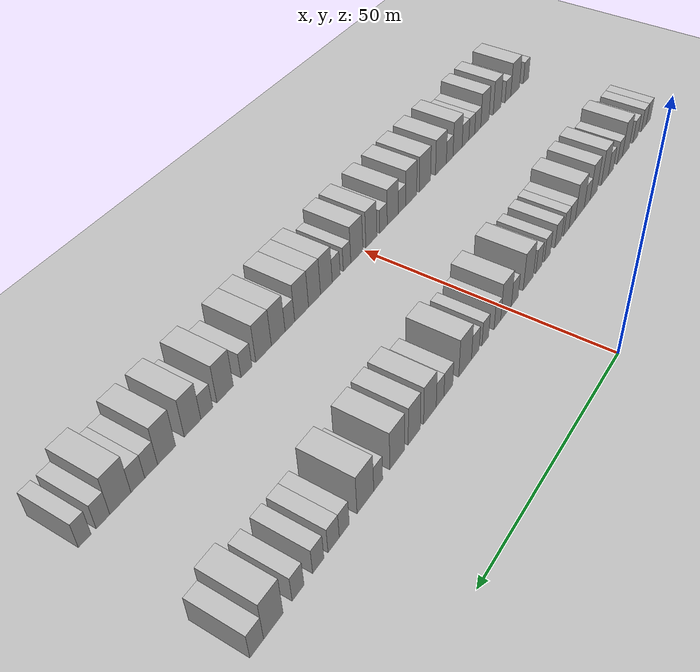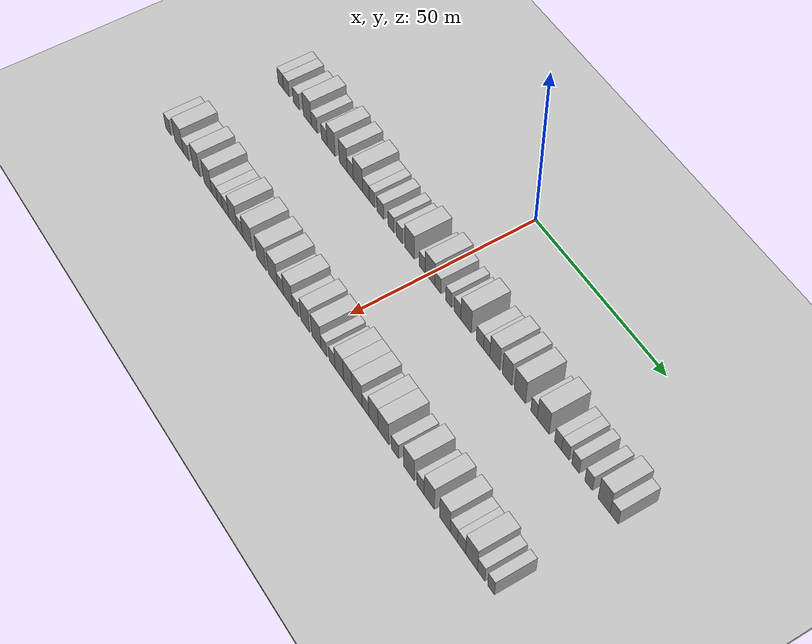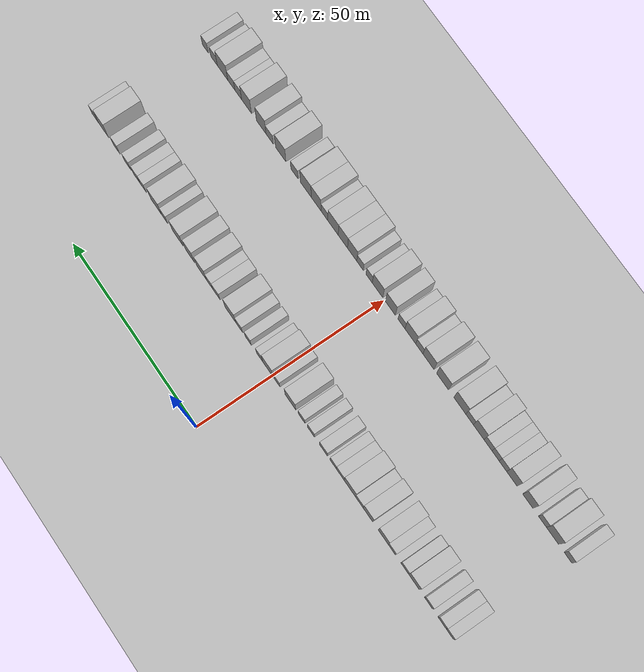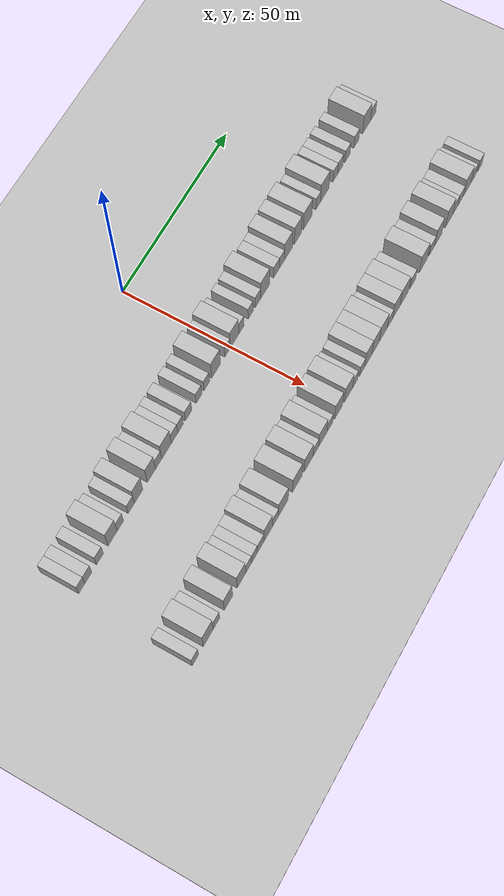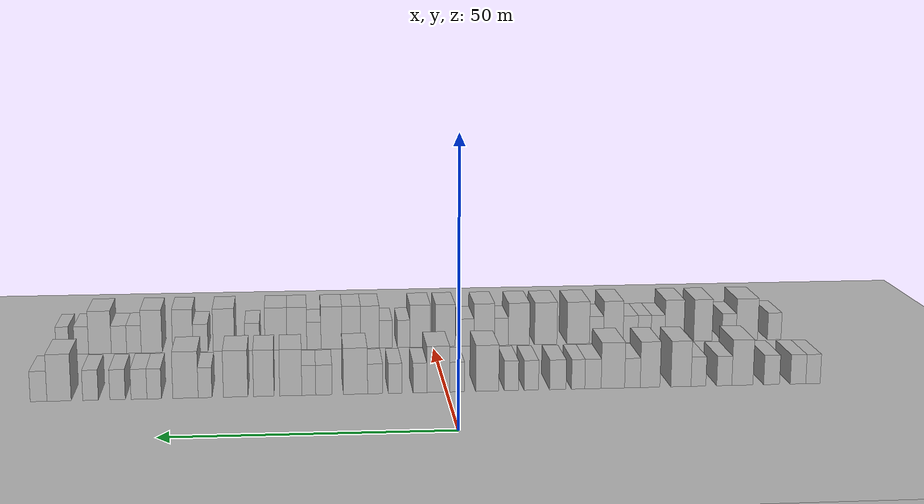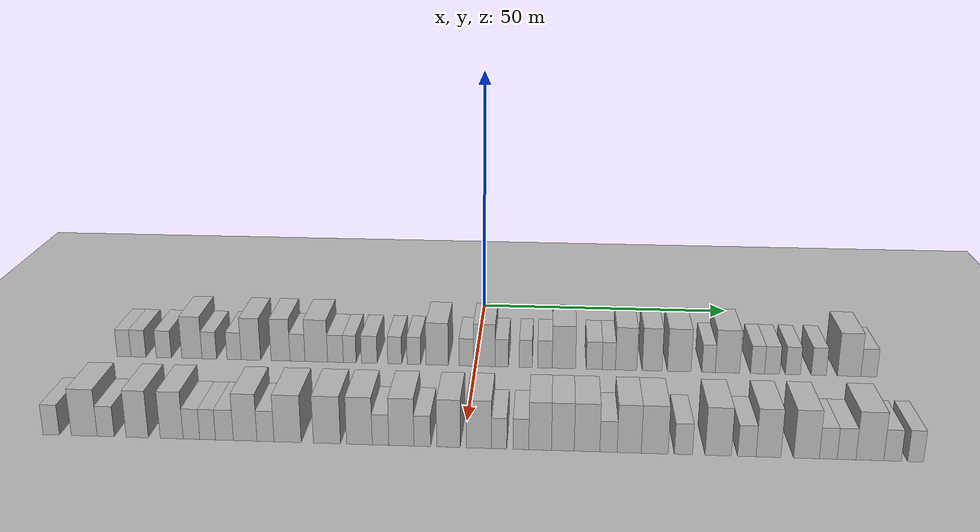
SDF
<sdf version="1.6">
 <world name="default">
  <include><name>ground_plane_1</name><uri>model://HANNAS_ground_plane</uri></include>
  <include>
   <name>ground_plane_2</name>
   <uri>model://HANNAS_ground_plane</uri>
   <pose>100 0 0  0 0 0</pose>
  </include>
  <model name="building_36">
   <static>1</static>
   <pose>25.0000 -66.6656 0 0.000000 0.000000 0.000000</pose>
   <link name="link">
    <pose>0 0 3.00 0 0 0</pose>
    <collision name="collision"><geometry><box><size>10.0000 2.6644 6.0000</size></box></geometry></collision>
    <visual name="visual">
     <cast_shadows>0</cast_shadows>
     <geometry><box><size>10.0000 2.6644 6.0000</size></box></geometry>
     <material>
      <script>
       <uri>model://HANNAS_wall/materials/scripts</uri>
       <uri>model://HANNAS_wall/materials/textures</uri>
       <name>vrc/HANNAS_wall</name>
      </script>
     </material>
    </visual>
   </link>
  </model>
  <model name="building_37">
   <static>1</static>
   <pose>25.0000 -63.8948 0 0.000000 0.000000 0.000000</pose>
   <link name="link">
    <pose>0 0 3.00 0 0 0</pose>
    <collision name="collision"><geometry><box><size>10.0000 2.8771 6.0000</size></box></geometry></collision>
    <visual name="visual">
     <cast_shadows>0</cast_shadows>
     <geometry><box><size>10.0000 2.8771 6.0000</size></box></geometry>
     <material>
      <script>
       <uri>model://HANNAS_wall/materials/scripts</uri>
       <uri>model://HANNAS_wall/materials/textures</uri>
       <name>vrc/HANNAS_wall</name>
      </script>
     </material>
    </visual>
   </link>
  </model>
  <model name="building_38">
   <static>1</static>
   <pose>25.0000 -58.9998 0 0.000000 0.000000 0.000000</pose>
   <link name="link">
    <pose>0 0 3.00 0 0 0</pose>
    <collision name="collision"><geometry><box><size>10.0000 2.9128 6.0000</size></box></geometry></collision>
    <visual name="visual">
     <cast_shadows>0</cast_shadows>
     <geometry><box><size>10.0000 2.9128 6.0000</size></box></geometry>
     <material>
      <script>
       <uri>model://HANNAS_wall/materials/scripts</uri>
       <uri>model://HANNAS_wall/materials/textures</uri>
       <name>vrc/HANNAS_wall</name>
      </script>
     </material>
    </visual>
   </link>
  </model>
  <model name="building_39">
   <static>1</static>
   <pose>25.0000 -53.5997 0 0.000000 0.000000 0.000000</pose>
   <link name="link">
    <pose>0 0 4.50 0 0 0</pose>
    <collision name="collision"><geometry><box><size>10.0000 3.8875 9.0000</size></box></geometry></collision>
    <visual name="visual">
     <cast_shadows>0</cast_shadows>
     <geometry><box><size>10.0000 3.8875 9.0000</size></box></geometry>
     <material>
      <script>
       <uri>model://HANNAS_wall/materials/scripts</uri>
       <uri>model://HANNAS_wall/materials/textures</uri>
       <name>vrc/HANNAS_wall</name>
      </script>
     </material>
    </visual>
   </link>
  </model>
  <model name="building_40">
   <static>1</static>
   <pose>25.0000 -50.2685 0 0.000000 0.000000 0.000000</pose>
   <link name="link">
    <pose>0 0 3.00 0 0 0</pose>
    <collision name="collision"><geometry><box><size>10.0000 2.7749 6.0000</size></box></geometry></collision>
    <visual name="visual">
     <cast_shadows>0</cast_shadows>
     <geometry><box><size>10.0000 2.7749 6.0000</size></box></geometry>
     <material>
      <script>
       <uri>model://HANNAS_wall/materials/scripts</uri>
       <uri>model://HANNAS_wall/materials/textures</uri>
       <name>vrc/HANNAS_wall</name>
      </script>
     </material>
    </visual>
   </link>
  </model>
  <model name="building_41">
   <static>1</static>
   <pose>25.0000 -45.5206 0 0.000000 0.000000 0.000000</pose>
   <link name="link">
    <pose>0 0 3.00 0 0 0</pose>
    <collision name="collision"><geometry><box><size>10.0000 2.7209 6.0000</size></box></geometry></collision>
    <visual name="visual">
     <cast_shadows>0</cast_shadows>
     <geometry><box><size>10.0000 2.7209 6.0000</size></box></geometry>
     <material>
      <script>
       <uri>model://HANNAS_wall/materials/scripts</uri>
       <uri>model://HANNAS_wall/materials/textures</uri>
       <name>vrc/HANNAS_wall</name>
      </script>
     </material>
    </visual>
   </link>
  </model>
  <model name="building_42">
   <static>1</static>
   <pose>25.0000 -42.3078 0 0.000000 0.000000 0.000000</pose>
   <link name="link">
    <pose>0 0 4.50 0 0 0</pose>
    <collision name="collision"><geometry><box><size>10.0000 3.7046 9.0000</size></box></geometry></collision>
    <visual name="visual">
     <cast_shadows>0</cast_shadows>
     <geometry><box><size>10.0000 3.7046 9.0000</size></box></geometry>
     <material>
      <script>
       <uri>model://HANNAS_wall/materials/scripts</uri>
       <uri>model://HANNAS_wall/materials/textures</uri>
       <name>vrc/HANNAS_wall</name>
      </script>
     </material>
    </visual>
   </link>
  </model>
  <model name="building_43">
   <static>1</static>
   <pose>25.0000 -36.6553 0 0.000000 0.000000 0.000000</pose>
   <link name="link">
    <pose>0 0 4.50 0 0 0</pose>
    <collision name="collision"><geometry><box><size>10.0000 3.6004 9.0000</size></box></geometry></collision>
    <visual name="visual">
     <cast_shadows>0</cast_shadows>
     <geometry><box><size>10.0000 3.6004 9.0000</size></box></geometry>
     <material>
      <script>
       <uri>model://HANNAS_wall/materials/scripts</uri>
       <uri>model://HANNAS_wall/materials/textures</uri>
       <name>vrc/HANNAS_wall</name>
      </script>
     </material>
    </visual>
   </link>
  </model>
  <model name="building_44">
   <static>1</static>
   <pose>25.0000 -33.4309 0 0.000000 0.000000 0.000000</pose>
   <link name="link">
    <pose>0 0 3.00 0 0 0</pose>
    <collision name="collision"><geometry><box><size>10.0000 2.8486 6.0000</size></box></geometry></collision>
    <visual name="visual">
     <cast_shadows>0</cast_shadows>
     <geometry><box><size>10.0000 2.8486 6.0000</size></box></geometry>
     <material>
      <script>
       <uri>model://HANNAS_wall/materials/scripts</uri>
       <uri>model://HANNAS_wall/materials/textures</uri>
       <name>vrc/HANNAS_wall</name>
      </script>
     </material>
    </visual>
   </link>
  </model>
  <model name="building_45">
   <static>1</static>
   <pose>25.0000 -29.8701 0 0.000000 0.000000 0.000000</pose>
   <link name="link">
    <pose>0 0 4.50 0 0 0</pose>
    <collision name="collision"><geometry><box><size>10.0000 4.2731 9.0000</size></box></geometry></collision>
    <visual name="visual">
     <cast_shadows>0</cast_shadows>
     <geometry><box><size>10.0000 4.2731 9.0000</size></box></geometry>
     <material>
      <script>
       <uri>model://HANNAS_wall/materials/scripts</uri>
       <uri>model://HANNAS_wall/materials/textures</uri>
       <name>vrc/HANNAS_wall</name>
      </script>
     </material>
    </visual>
   </link>
  </model>
  <model name="building_46">
   <static>1</static>
   <pose>25.0000 -26.2513 0 0.000000 0.000000 0.000000</pose>
   <link name="link">
    <pose>0 0 3.00 0 0 0</pose>
    <collision name="collision"><geometry><box><size>10.0000 2.9645 6.0000</size></box></geometry></collision>
    <visual name="visual">
     <cast_shadows>0</cast_shadows>
     <geometry><box><size>10.0000 2.9645 6.0000</size></box></geometry>
     <material>
      <script>
       <uri>model://HANNAS_wall/materials/scripts</uri>
       <uri>model://HANNAS_wall/materials/textures</uri>
       <name>vrc/HANNAS_wall</name>
      </script>
     </material>
    </visual>
   </link>
  </model>
  <model name="building_47">
   <static>1</static>
   <pose>25.0000 -23.5594 0 0.000000 0.000000 0.000000</pose>
   <link name="link">
    <pose>0 0 3.00 0 0 0</pose>
    <collision name="collision"><geometry><box><size>10.0000 2.4193 6.0000</size></box></geometry></collision>
    <visual name="visual">
     <cast_shadows>0</cast_shadows>
     <geometry><box><size>10.0000 2.4193 6.0000</size></box></geometry>
     <material>
      <script>
       <uri>model://HANNAS_wall/materials/scripts</uri>
       <uri>model://HANNAS_wall/materials/textures</uri>
       <name>vrc/HANNAS_wall</name>
      </script>
     </material>
    </visual>
   </link>
  </model>
  <model name="building_48">
   <static>1</static>
   <pose>25.0000 -19.8639 0 0.000000 0.000000 0.000000</pose>
   <link name="link">
    <pose>0 0 3.00 0 0 0</pose>
    <collision name="collision"><geometry><box><size>10.0000 2.9717 6.0000</size></box></geometry></collision>
    <visual name="visual">
     <cast_shadows>0</cast_shadows>
     <geometry><box><size>10.0000 2.9717 6.0000</size></box></geometry>
     <material>
      <script>
       <uri>model://HANNAS_wall/materials/scripts</uri>
       <uri>model://HANNAS_wall/materials/textures</uri>
       <name>vrc/HANNAS_wall</name>
      </script>
     </material>
    </visual>
   </link>
  </model>
  <model name="building_49">
   <static>1</static>
   <pose>25.0000 -15.0693 0 0.000000 0.000000 0.000000</pose>
   <link name="link">
    <pose>0 0 3.00 0 0 0</pose>
    <collision name="collision"><geometry><box><size>10.0000 2.6176 6.0000</size></box></geometry></collision>
    <visual name="visual">
     <cast_shadows>0</cast_shadows>
     <geometry><box><size>10.0000 2.6176 6.0000</size></box></geometry>
     <material>
      <script>
       <uri>model://HANNAS_wall/materials/scripts</uri>
       <uri>model://HANNAS_wall/materials/textures</uri>
       <name>vrc/HANNAS_wall</name>
      </script>
     </material>
    </visual>
   </link>
  </model>
  <model name="building_50">
   <static>1</static>
   <pose>25.0000 -11.4796 0 0.000000 0.000000 0.000000</pose>
   <link name="link">
    <pose>0 0 3.00 0 0 0</pose>
    <collision name="collision"><geometry><box><size>10.0000 2.5616 6.0000</size></box></geometry></collision>
    <visual name="visual">
     <cast_shadows>0</cast_shadows>
     <geometry><box><size>10.0000 2.5616 6.0000</size></box></geometry>
     <material>
      <script>
       <uri>model://HANNAS_wall/materials/scripts</uri>
       <uri>model://HANNAS_wall/materials/textures</uri>
       <name>vrc/HANNAS_wall</name>
      </script>
     </material>
    </visual>
   </link>
  </model>
  <model name="building_51">
   <static>1</static>
   <pose>25.0000 -7.1189 0 0.000000 0.000000 0.000000</pose>
   <link name="link">
    <pose>0 0 4.50 0 0 0</pose>
    <collision name="collision"><geometry><box><size>10.0000 4.1599 9.0000</size></box></geometry></collision>
    <visual name="visual">
     <cast_shadows>0</cast_shadows>
     <geometry><box><size>10.0000 4.1599 9.0000</size></box></geometry>
     <material>
      <script>
       <uri>model://HANNAS_wall/materials/scripts</uri>
       <uri>model://HANNAS_wall/materials/textures</uri>
       <name>vrc/HANNAS_wall</name>
      </script>
     </material>
    </visual>
   </link>
  </model>
  <model name="building_52">
   <static>1</static>
   <pose>25.0000 -1.6992 0 0.000000 0.000000 0.000000</pose>
   <link name="link">
    <pose>0 0 3.00 0 0 0</pose>
    <collision name="collision"><geometry><box><size>10.0000 2.6795 6.0000</size></box></geometry></collision>
    <visual name="visual">
     <cast_shadows>0</cast_shadows>
     <geometry><box><size>10.0000 2.6795 6.0000</size></box></geometry>
     <material>
      <script>
       <uri>model://HANNAS_wall/materials/scripts</uri>
       <uri>model://HANNAS_wall/materials/textures</uri>
       <name>vrc/HANNAS_wall</name>
      </script>
     </material>
    </visual>
   </link>
  </model>
  <model name="building_53">
   <static>1</static>
   <pose>25.0000 1.6835 0 0.000000 0.000000 0.000000</pose>
   <link name="link">
    <pose>0 0 4.50 0 0 0</pose>
    <collision name="collision"><geometry><box><size>10.0000 4.0857 9.0000</size></box></geometry></collision>
    <visual name="visual">
     <cast_shadows>0</cast_shadows>
     <geometry><box><size>10.0000 4.0857 9.0000</size></box></geometry>
     <material>
      <script>
       <uri>model://HANNAS_wall/materials/scripts</uri>
       <uri>model://HANNAS_wall/materials/textures</uri>
       <name>vrc/HANNAS_wall</name>
      </script>
     </material>
    </visual>
   </link>
  </model>
  <model name="building_54">
   <static>1</static>
   <pose>25.0000 4.9581 0 0.000000 0.000000 0.000000</pose>
   <link name="link">
    <pose>0 0 3.00 0 0 0</pose>
    <collision name="collision"><geometry><box><size>10.0000 2.4636 6.0000</size></box></geometry></collision>
    <visual name="visual">
     <cast_shadows>0</cast_shadows>
     <geometry><box><size>10.0000 2.4636 6.0000</size></box></geometry>
     <material>
      <script>
       <uri>model://HANNAS_wall/materials/scripts</uri>
       <uri>model://HANNAS_wall/materials/textures</uri>
       <name>vrc/HANNAS_wall</name>
      </script>
     </material>
    </visual>
   </link>
  </model>
  <model name="building_55">
   <static>1</static>
   <pose>25.0000 9.3932 0 0.000000 0.000000 0.000000</pose>
   <link name="link">
    <pose>0 0 3.00 0 0 0</pose>
    <collision name="collision"><geometry><box><size>10.0000 2.4064 6.0000</size></box></geometry></collision>
    <visual name="visual">
     <cast_shadows>0</cast_shadows>
     <geometry><box><size>10.0000 2.4064 6.0000</size></box></geometry>
     <material>
      <script>
       <uri>model://HANNAS_wall/materials/scripts</uri>
       <uri>model://HANNAS_wall/materials/textures</uri>
       <name>vrc/HANNAS_wall</name>
      </script>
     </material>
    </visual>
   </link>
  </model>
  <model name="building_56">
   <static>1</static>
   <pose>25.0000 12.9492 0 0.000000 0.000000 0.000000</pose>
   <link name="link">
    <pose>0 0 3.00 0 0 0</pose>
    <collision name="collision"><geometry><box><size>10.0000 2.7057 6.0000</size></box></geometry></collision>
    <visual name="visual">
     <cast_shadows>0</cast_shadows>
     <geometry><box><size>10.0000 2.7057 6.0000</size></box></geometry>
     <material>
      <script>
       <uri>model://HANNAS_wall/materials/scripts</uri>
       <uri>model://HANNAS_wall/materials/textures</uri>
       <name>vrc/HANNAS_wall</name>
      </script>
     </material>
    </visual>
   </link>
  </model>
  <model name="building_57">
   <static>1</static>
   <pose>25.0000 16.4525 0 0.000000 0.000000 0.000000</pose>
   <link name="link">
    <pose>0 0 4.50 0 0 0</pose>
    <collision name="collision"><geometry><box><size>10.0000 4.3008 9.0000</size></box></geometry></collision>
    <visual name="visual">
     <cast_shadows>0</cast_shadows>
     <geometry><box><size>10.0000 4.3008 9.0000</size></box></geometry>
     <material>
      <script>
       <uri>model://HANNAS_wall/materials/scripts</uri>
       <uri>model://HANNAS_wall/materials/textures</uri>
       <name>vrc/HANNAS_wall</name>
      </script>
     </material>
    </visual>
   </link>
  </model>
  <model name="building_58">
   <static>1</static>
   <pose>25.0000 22.0597 0 0.000000 0.000000 0.000000</pose>
   <link name="link">
    <pose>0 0 3.00 0 0 0</pose>
    <collision name="collision"><geometry><box><size>10.0000 2.9136 6.0000</size></box></geometry></collision>
    <visual name="visual">
     <cast_shadows>0</cast_shadows>
     <geometry><box><size>10.0000 2.9136 6.0000</size></box></geometry>
     <material>
      <script>
       <uri>model://HANNAS_wall/materials/scripts</uri>
       <uri>model://HANNAS_wall/materials/textures</uri>
       <name>vrc/HANNAS_wall</name>
      </script>
     </material>
    </visual>
   </link>
  </model>
  <model name="building_59">
   <static>1</static>
   <pose>25.0000 24.7495 0 0.000000 0.000000 0.000000</pose>
   <link name="link">
    <pose>0 0 3.00 0 0 0</pose>
    <collision name="collision"><geometry><box><size>10.0000 2.4660 6.0000</size></box></geometry></collision>
    <visual name="visual">
     <cast_shadows>0</cast_shadows>
     <geometry><box><size>10.0000 2.4660 6.0000</size></box></geometry>
     <material>
      <script>
       <uri>model://HANNAS_wall/materials/scripts</uri>
       <uri>model://HANNAS_wall/materials/textures</uri>
       <name>vrc/HANNAS_wall</name>
      </script>
     </material>
    </visual>
   </link>
  </model>
  <model name="building_60">
   <static>1</static>
   <pose>25.0000 27.9422 0 0.000000 0.000000 0.000000</pose>
   <link name="link">
    <pose>0 0 4.50 0 0 0</pose>
    <collision name="collision"><geometry><box><size>10.0000 3.9193 9.0000</size></box></geometry></collision>
    <visual name="visual">
     <cast_shadows>0</cast_shadows>
     <geometry><box><size>10.0000 3.9193 9.0000</size></box></geometry>
     <material>
      <script>
       <uri>model://HANNAS_wall/materials/scripts</uri>
       <uri>model://HANNAS_wall/materials/textures</uri>
       <name>vrc/HANNAS_wall</name>
      </script>
     </material>
    </visual>
   </link>
  </model>
  <model name="building_61">
   <static>1</static>
   <pose>25.0000 32.7056 0 0.000000 0.000000 0.000000</pose>
   <link name="link">
    <pose>0 0 4.50 0 0 0</pose>
    <collision name="collision"><geometry><box><size>10.0000 3.6075 9.0000</size></box></geometry></collision>
    <visual name="visual">
     <cast_shadows>0</cast_shadows>
     <geometry><box><size>10.0000 3.6075 9.0000</size></box></geometry>
     <material>
      <script>
       <uri>model://HANNAS_wall/materials/scripts</uri>
       <uri>model://HANNAS_wall/materials/textures</uri>
       <name>vrc/HANNAS_wall</name>
      </script>
     </material>
    </visual>
   </link>
  </model>
  <model name="building_62">
   <static>1</static>
   <pose>25.0000 37.6634 0 0.000000 0.000000 0.000000</pose>
   <link name="link">
    <pose>0 0 4.50 0 0 0</pose>
    <collision name="collision"><geometry><box><size>10.0000 4.3081 9.0000</size></box></geometry></collision>
    <visual name="visual">
     <cast_shadows>0</cast_shadows>
     <geometry><box><size>10.0000 4.3081 9.0000</size></box></geometry>
     <material>
      <script>
       <uri>model://HANNAS_wall/materials/scripts</uri>
       <uri>model://HANNAS_wall/materials/textures</uri>
       <name>vrc/HANNAS_wall</name>
      </script>
     </material>
    </visual>
   </link>
  </model>
  <model name="building_63">
   <static>1</static>
   <pose>25.0000 43.0304 0 0.000000 0.000000 0.000000</pose>
   <link name="link">
    <pose>0 0 3.00 0 0 0</pose>
    <collision name="collision"><geometry><box><size>10.0000 2.4259 6.0000</size></box></geometry></collision>
    <visual name="visual">
     <cast_shadows>0</cast_shadows>
     <geometry><box><size>10.0000 2.4259 6.0000</size></box></geometry>
     <material>
      <script>
       <uri>model://HANNAS_wall/materials/scripts</uri>
       <uri>model://HANNAS_wall/materials/textures</uri>
       <name>vrc/HANNAS_wall</name>
      </script>
     </material>
    </visual>
   </link>
  </model>
  <model name="building_64">
   <static>1</static>
   <pose>25.0000 46.4620 0 0.000000 0.000000 0.000000</pose>
   <link name="link">
    <pose>0 0 4.50 0 0 0</pose>
    <collision name="collision"><geometry><box><size>10.0000 4.4374 9.0000</size></box></geometry></collision>
    <visual name="visual">
     <cast_shadows>0</cast_shadows>
     <geometry><box><size>10.0000 4.4374 9.0000</size></box></geometry>
     <material>
      <script>
       <uri>model://HANNAS_wall/materials/scripts</uri>
       <uri>model://HANNAS_wall/materials/textures</uri>
       <name>vrc/HANNAS_wall</name>
      </script>
     </material>
    </visual>
   </link>
  </model>
  <model name="building_65">
   <static>1</static>
   <pose>25.0000 51.9413 0 0.000000 0.000000 0.000000</pose>
   <link name="link">
    <pose>0 0 3.00 0 0 0</pose>
    <collision name="collision"><geometry><box><size>10.0000 2.5212 6.0000</size></box></geometry></collision>
    <visual name="visual">
     <cast_shadows>0</cast_shadows>
     <geometry><box><size>10.0000 2.5212 6.0000</size></box></geometry>
     <material>
      <script>
       <uri>model://HANNAS_wall/materials/scripts</uri>
       <uri>model://HANNAS_wall/materials/textures</uri>
       <name>vrc/HANNAS_wall</name>
      </script>
     </material>
    </visual>
   </link>
  </model>
  <model name="building_66">
   <static>1</static>
   <pose>25.0000 54.5927 0 0.000000 0.000000 0.000000</pose>
   <link name="link">
    <pose>0 0 3.00 0 0 0</pose>
    <collision name="collision"><geometry><box><size>10.0000 2.7815 6.0000</size></box></geometry></collision>
    <visual name="visual">
     <cast_shadows>0</cast_shadows>
     <geometry><box><size>10.0000 2.7815 6.0000</size></box></geometry>
     <material>
      <script>
       <uri>model://HANNAS_wall/materials/scripts</uri>
       <uri>model://HANNAS_wall/materials/textures</uri>
       <name>vrc/HANNAS_wall</name>
      </script>
     </material>
    </visual>
   </link>
  </model>
  <model name="building_67">
   <static>1</static>
   <pose>25.0000 58.3246 0 0.000000 0.000000 0.000000</pose>
   <link name="link">
    <pose>0 0 3.00 0 0 0</pose>
    <collision name="collision"><geometry><box><size>10.0000 2.6824 6.0000</size></box></geometry></collision>
    <visual name="visual">
     <cast_shadows>0</cast_shadows>
     <geometry><box><size>10.0000 2.6824 6.0000</size></box></geometry>
     <material>
      <script>
       <uri>model://HANNAS_wall/materials/scripts</uri>
       <uri>model://HANNAS_wall/materials/textures</uri>
       <name>vrc/HANNAS_wall</name>
      </script>
     </material>
    </visual>
   </link>
  </model>
  <model name="building_68">
   <static>1</static>
   <pose>25.0000 63.0228 0 0.000000 0.000000 0.000000</pose>
   <link name="link">
    <pose>0 0 3.00 0 0 0</pose>
    <collision name="collision"><geometry><box><size>10.0000 2.7141 6.0000</size></box></geometry></collision>
    <visual name="visual">
     <cast_shadows>0</cast_shadows>
     <geometry><box><size>10.0000 2.7141 6.0000</size></box></geometry>
     <material>
      <script>
       <uri>model://HANNAS_wall/materials/scripts</uri>
       <uri>model://HANNAS_wall/materials/textures</uri>
       <name>vrc/HANNAS_wall</name>
      </script>
     </material>
    </visual>
   </link>
  </model>
  <model name="building_69">
   <static>1</static>
   <pose>25.0000 68.4791 0 0.000000 0.000000 0.000000</pose>
   <link name="link">
    <pose>0 0 4.50 0 0 0</pose>
    <collision name="collision"><geometry><box><size>10.0000 4.1984 9.0000</size></box></geometry></collision>
    <visual name="visual">
     <cast_shadows>0</cast_shadows>
     <geometry><box><size>10.0000 4.1984 9.0000</size></box></geometry>
     <material>
      <script>
       <uri>model://HANNAS_wall/materials/scripts</uri>
       <uri>model://HANNAS_wall/materials/textures</uri>
       <name>vrc/HANNAS_wall</name>
      </script>
     </material>
    </visual>
   </link>
  </model>
  <model name="building_70">
   <static>1</static>
   <pose>25.0000 72.0230 0 0.000000 0.000000 0.000000</pose>
   <link name="link">
    <pose>0 0 3.00 0 0 0</pose>
    <collision name="collision"><geometry><box><size>10.0000 2.8895 6.0000</size></box></geometry></collision>
    <visual name="visual">
     <cast_shadows>0</cast_shadows>
     <geometry><box><size>10.0000 2.8895 6.0000</size></box></geometry>
     <material>
      <script>
       <uri>model://HANNAS_wall/materials/scripts</uri>
       <uri>model://HANNAS_wall/materials/textures</uri>
       <name>vrc/HANNAS_wall</name>
      </script>
     </material>
    </visual>
   </link>
  </model>
  <model name="building_142">
   <static>1</static>
   <pose>55.0000 -68.1562 0 0.000000 0.000000 0.000000</pose>
   <link name="link">
    <pose>0 0 3.00 0 0 0</pose>
    <collision name="collision"><geometry><box><size>10.0000 2.7629 6.0000</size></box></geometry></collision>
    <visual name="visual">
     <cast_shadows>0</cast_shadows>
     <geometry><box><size>10.0000 2.7629 6.0000</size></box></geometry>
     <material>
      <script>
       <uri>model://HANNAS_wall/materials/scripts</uri>
       <uri>model://HANNAS_wall/materials/textures</uri>
       <name>vrc/HANNAS_wall</name>
      </script>
     </material>
    </visual>
   </link>
  </model>
  <model name="building_143">
   <static>1</static>
   <pose>55.0000 -62.5851 0 0.000000 0.000000 0.000000</pose>
   <link name="link">
    <pose>0 0 4.50 0 0 0</pose>
    <collision name="collision"><geometry><box><size>10.0000 4.3792 9.0000</size></box></geometry></collision>
    <visual name="visual">
     <cast_shadows>0</cast_shadows>
     <geometry><box><size>10.0000 4.3792 9.0000</size></box></geometry>
     <material>
      <script>
       <uri>model://HANNAS_wall/materials/scripts</uri>
       <uri>model://HANNAS_wall/materials/textures</uri>
       <name>vrc/HANNAS_wall</name>
      </script>
     </material>
    </visual>
   </link>
  </model>
  <model name="building_144">
   <static>1</static>
   <pose>55.0000 -58.9670 0 0.000000 0.000000 0.000000</pose>
   <link name="link">
    <pose>0 0 3.00 0 0 0</pose>
    <collision name="collision"><geometry><box><size>10.0000 2.8569 6.0000</size></box></geometry></collision>
    <visual name="visual">
     <cast_shadows>0</cast_shadows>
     <geometry><box><size>10.0000 2.8569 6.0000</size></box></geometry>
     <material>
      <script>
       <uri>model://HANNAS_wall/materials/scripts</uri>
       <uri>model://HANNAS_wall/materials/textures</uri>
       <name>vrc/HANNAS_wall</name>
      </script>
     </material>
    </visual>
   </link>
  </model>
  <model name="building_145">
   <static>1</static>
   <pose>55.0000 -53.6835 0 0.000000 0.000000 0.000000</pose>
   <link name="link">
    <pose>0 0 4.50 0 0 0</pose>
    <collision name="collision"><geometry><box><size>10.0000 3.7102 9.0000</size></box></geometry></collision>
    <visual name="visual">
     <cast_shadows>0</cast_shadows>
     <geometry><box><size>10.0000 3.7102 9.0000</size></box></geometry>
     <material>
      <script>
       <uri>model://HANNAS_wall/materials/scripts</uri>
       <uri>model://HANNAS_wall/materials/textures</uri>
       <name>vrc/HANNAS_wall</name>
      </script>
     </material>
    </visual>
   </link>
  </model>
  <model name="building_146">
   <static>1</static>
   <pose>55.0000 -47.9120 0 0.000000 0.000000 0.000000</pose>
   <link name="link">
    <pose>0 0 4.50 0 0 0</pose>
    <collision name="collision"><geometry><box><size>10.0000 3.8327 9.0000</size></box></geometry></collision>
    <visual name="visual">
     <cast_shadows>0</cast_shadows>
     <geometry><box><size>10.0000 3.8327 9.0000</size></box></geometry>
     <material>
      <script>
       <uri>model://HANNAS_wall/materials/scripts</uri>
       <uri>model://HANNAS_wall/materials/textures</uri>
       <name>vrc/HANNAS_wall</name>
      </script>
     </material>
    </visual>
   </link>
  </model>
  <model name="building_147">
   <static>1</static>
   <pose>55.0000 -44.6135 0 0.000000 0.000000 0.000000</pose>
   <link name="link">
    <pose>0 0 3.00 0 0 0</pose>
    <collision name="collision"><geometry><box><size>10.0000 2.7642 6.0000</size></box></geometry></collision>
    <visual name="visual">
     <cast_shadows>0</cast_shadows>
     <geometry><box><size>10.0000 2.7642 6.0000</size></box></geometry>
     <material>
      <script>
       <uri>model://HANNAS_wall/materials/scripts</uri>
       <uri>model://HANNAS_wall/materials/textures</uri>
       <name>vrc/HANNAS_wall</name>
      </script>
     </material>
    </visual>
   </link>
  </model>
  <model name="building_148">
   <static>1</static>
   <pose>55.0000 -41.9197 0 0.000000 0.000000 0.000000</pose>
   <link name="link">
    <pose>0 0 3.00 0 0 0</pose>
    <collision name="collision"><geometry><box><size>10.0000 2.6235 6.0000</size></box></geometry></collision>
    <visual name="visual">
     <cast_shadows>0</cast_shadows>
     <geometry><box><size>10.0000 2.6235 6.0000</size></box></geometry>
     <material>
      <script>
       <uri>model://HANNAS_wall/materials/scripts</uri>
       <uri>model://HANNAS_wall/materials/textures</uri>
       <name>vrc/HANNAS_wall</name>
      </script>
     </material>
    </visual>
   </link>
  </model>
  <model name="building_149">
   <static>1</static>
   <pose>55.0000 -39.1231 0 0.000000 0.000000 0.000000</pose>
   <link name="link">
    <pose>0 0 3.00 0 0 0</pose>
    <collision name="collision"><geometry><box><size>10.0000 2.9695 6.0000</size></box></geometry></collision>
    <visual name="visual">
     <cast_shadows>0</cast_shadows>
     <geometry><box><size>10.0000 2.9695 6.0000</size></box></geometry>
     <material>
      <script>
       <uri>model://HANNAS_wall/materials/scripts</uri>
       <uri>model://HANNAS_wall/materials/textures</uri>
       <name>vrc/HANNAS_wall</name>
      </script>
     </material>
    </visual>
   </link>
  </model>
  <model name="building_150">
   <static>1</static>
   <pose>55.0000 -35.6779 0 0.000000 0.000000 0.000000</pose>
   <link name="link">
    <pose>0 0 4.50 0 0 0</pose>
    <collision name="collision"><geometry><box><size>10.0000 3.9209 9.0000</size></box></geometry></collision>
    <visual name="visual">
     <cast_shadows>0</cast_shadows>
     <geometry><box><size>10.0000 3.9209 9.0000</size></box></geometry>
     <material>
      <script>
       <uri>model://HANNAS_wall/materials/scripts</uri>
       <uri>model://HANNAS_wall/materials/textures</uri>
       <name>vrc/HANNAS_wall</name>
      </script>
     </material>
    </visual>
   </link>
  </model>
  <model name="building_151">
   <static>1</static>
   <pose>55.0000 -32.3105 0 0.000000 0.000000 0.000000</pose>
   <link name="link">
    <pose>0 0 3.00 0 0 0</pose>
    <collision name="collision"><geometry><box><size>10.0000 2.8139 6.0000</size></box></geometry></collision>
    <visual name="visual">
     <cast_shadows>0</cast_shadows>
     <geometry><box><size>10.0000 2.8139 6.0000</size></box></geometry>
     <material>
      <script>
       <uri>model://HANNAS_wall/materials/scripts</uri>
       <uri>model://HANNAS_wall/materials/textures</uri>
       <name>vrc/HANNAS_wall</name>
      </script>
     </material>
    </visual>
   </link>
  </model>
  <model name="building_152">
   <static>1</static>
   <pose>55.0000 -28.6632 0 0.000000 0.000000 0.000000</pose>
   <link name="link">
    <pose>0 0 4.50 0 0 0</pose>
    <collision name="collision"><geometry><box><size>10.0000 4.4807 9.0000</size></box></geometry></collision>
    <visual name="visual">
     <cast_shadows>0</cast_shadows>
     <geometry><box><size>10.0000 4.4807 9.0000</size></box></geometry>
     <material>
      <script>
       <uri>model://HANNAS_wall/materials/scripts</uri>
       <uri>model://HANNAS_wall/materials/textures</uri>
       <name>vrc/HANNAS_wall</name>
      </script>
     </material>
    </visual>
   </link>
  </model>
  <model name="building_153">
   <static>1</static>
   <pose>55.0000 -22.1889 0 0.000000 0.000000 0.000000</pose>
   <link name="link">
    <pose>0 0 4.50 0 0 0</pose>
    <collision name="collision"><geometry><box><size>10.0000 4.4678 9.0000</size></box></geometry></collision>
    <visual name="visual">
     <cast_shadows>0</cast_shadows>
     <geometry><box><size>10.0000 4.4678 9.0000</size></box></geometry>
     <material>
      <script>
       <uri>model://HANNAS_wall/materials/scripts</uri>
       <uri>model://HANNAS_wall/materials/textures</uri>
       <name>vrc/HANNAS_wall</name>
      </script>
     </material>
    </visual>
   </link>
  </model>
  <model name="building_154">
   <static>1</static>
   <pose>55.0000 -16.8564 0 0.000000 0.000000 0.000000</pose>
   <link name="link">
    <pose>0 0 4.50 0 0 0</pose>
    <collision name="collision"><geometry><box><size>10.0000 4.1971 9.0000</size></box></geometry></collision>
    <visual name="visual">
     <cast_shadows>0</cast_shadows>
     <geometry><box><size>10.0000 4.1971 9.0000</size></box></geometry>
     <material>
      <script>
       <uri>model://HANNAS_wall/materials/scripts</uri>
       <uri>model://HANNAS_wall/materials/textures</uri>
       <name>vrc/HANNAS_wall</name>
      </script>
     </material>
    </visual>
   </link>
  </model>
  <model name="building_155">
   <static>1</static>
   <pose>55.0000 -13.3955 0 0.000000 0.000000 0.000000</pose>
   <link name="link">
    <pose>0 0 3.00 0 0 0</pose>
    <collision name="collision"><geometry><box><size>10.0000 2.7248 6.0000</size></box></geometry></collision>
    <visual name="visual">
     <cast_shadows>0</cast_shadows>
     <geometry><box><size>10.0000 2.7248 6.0000</size></box></geometry>
     <material>
      <script>
       <uri>model://HANNAS_wall/materials/scripts</uri>
       <uri>model://HANNAS_wall/materials/textures</uri>
       <name>vrc/HANNAS_wall</name>
      </script>
     </material>
    </visual>
   </link>
  </model>
  <model name="building_156">
   <static>1</static>
   <pose>55.0000 -9.9818 0 0.000000 0.000000 0.000000</pose>
   <link name="link">
    <pose>0 0 4.50 0 0 0</pose>
    <collision name="collision"><geometry><box><size>10.0000 4.1025 9.0000</size></box></geometry></collision>
    <visual name="visual">
     <cast_shadows>0</cast_shadows>
     <geometry><box><size>10.0000 4.1025 9.0000</size></box></geometry>
     <material>
      <script>
       <uri>model://HANNAS_wall/materials/scripts</uri>
       <uri>model://HANNAS_wall/materials/textures</uri>
       <name>vrc/HANNAS_wall</name>
      </script>
     </material>
    </visual>
   </link>
  </model>
  <model name="building_157">
   <static>1</static>
   <pose>55.0000 -6.5800 0 0.000000 0.000000 0.000000</pose>
   <link name="link">
    <pose>0 0 3.00 0 0 0</pose>
    <collision name="collision"><geometry><box><size>10.0000 2.7012 6.0000</size></box></geometry></collision>
    <visual name="visual">
     <cast_shadows>0</cast_shadows>
     <geometry><box><size>10.0000 2.7012 6.0000</size></box></geometry>
     <material>
      <script>
       <uri>model://HANNAS_wall/materials/scripts</uri>
       <uri>model://HANNAS_wall/materials/textures</uri>
       <name>vrc/HANNAS_wall</name>
      </script>
     </material>
    </visual>
   </link>
  </model>
  <model name="building_158">
   <static>1</static>
   <pose>55.0000 -2.3152 0 0.000000 0.000000 0.000000</pose>
   <link name="link">
    <pose>0 0 4.50 0 0 0</pose>
    <collision name="collision"><geometry><box><size>10.0000 3.8284 9.0000</size></box></geometry></collision>
    <visual name="visual">
     <cast_shadows>0</cast_shadows>
     <geometry><box><size>10.0000 3.8284 9.0000</size></box></geometry>
     <material>
      <script>
       <uri>model://HANNAS_wall/materials/scripts</uri>
       <uri>model://HANNAS_wall/materials/textures</uri>
       <name>vrc/HANNAS_wall</name>
      </script>
     </material>
    </visual>
   </link>
  </model>
  <model name="building_159">
   <static>1</static>
   <pose>55.0000 2.6324 0 0.000000 0.000000 0.000000</pose>
   <link name="link">
    <pose>0 0 4.50 0 0 0</pose>
    <collision name="collision"><geometry><box><size>10.0000 4.0668 9.0000</size></box></geometry></collision>
    <visual name="visual">
     <cast_shadows>0</cast_shadows>
     <geometry><box><size>10.0000 4.0668 9.0000</size></box></geometry>
     <material>
      <script>
       <uri>model://HANNAS_wall/materials/scripts</uri>
       <uri>model://HANNAS_wall/materials/textures</uri>
       <name>vrc/HANNAS_wall</name>
      </script>
     </material>
    </visual>
   </link>
  </model>
  <model name="building_160">
   <static>1</static>
   <pose>55.0000 5.8947 0 0.000000 0.000000 0.000000</pose>
   <link name="link">
    <pose>0 0 3.00 0 0 0</pose>
    <collision name="collision"><geometry><box><size>10.0000 2.4577 6.0000</size></box></geometry></collision>
    <visual name="visual">
     <cast_shadows>0</cast_shadows>
     <geometry><box><size>10.0000 2.4577 6.0000</size></box></geometry>
     <material>
      <script>
       <uri>model://HANNAS_wall/materials/scripts</uri>
       <uri>model://HANNAS_wall/materials/textures</uri>
       <name>vrc/HANNAS_wall</name>
      </script>
     </material>
    </visual>
   </link>
  </model>
  <model name="building_161">
   <static>1</static>
   <pose>55.0000 9.3995 0 0.000000 0.000000 0.000000</pose>
   <link name="link">
    <pose>0 0 3.00 0 0 0</pose>
    <collision name="collision"><geometry><box><size>10.0000 2.5519 6.0000</size></box></geometry></collision>
    <visual name="visual">
     <cast_shadows>0</cast_shadows>
     <geometry><box><size>10.0000 2.5519 6.0000</size></box></geometry>
     <material>
      <script>
       <uri>model://HANNAS_wall/materials/scripts</uri>
       <uri>model://HANNAS_wall/materials/textures</uri>
       <name>vrc/HANNAS_wall</name>
      </script>
     </material>
    </visual>
   </link>
  </model>
  <model name="building_162">
   <static>1</static>
   <pose>55.0000 12.4965 0 0.000000 0.000000 0.000000</pose>
   <link name="link">
    <pose>0 0 4.50 0 0 0</pose>
    <collision name="collision"><geometry><box><size>10.0000 3.6422 9.0000</size></box></geometry></collision>
    <visual name="visual">
     <cast_shadows>0</cast_shadows>
     <geometry><box><size>10.0000 3.6422 9.0000</size></box></geometry>
     <material>
      <script>
       <uri>model://HANNAS_wall/materials/scripts</uri>
       <uri>model://HANNAS_wall/materials/textures</uri>
       <name>vrc/HANNAS_wall</name>
      </script>
     </material>
    </visual>
   </link>
  </model>
  <model name="building_163">
   <static>1</static>
   <pose>55.0000 16.1462 0 0.000000 0.000000 0.000000</pose>
   <link name="link">
    <pose>0 0 4.50 0 0 0</pose>
    <collision name="collision"><geometry><box><size>10.0000 3.6571 9.0000</size></box></geometry></collision>
    <visual name="visual">
     <cast_shadows>0</cast_shadows>
     <geometry><box><size>10.0000 3.6571 9.0000</size></box></geometry>
     <material>
      <script>
       <uri>model://HANNAS_wall/materials/scripts</uri>
       <uri>model://HANNAS_wall/materials/textures</uri>
       <name>vrc/HANNAS_wall</name>
      </script>
     </material>
    </visual>
   </link>
  </model>
  <model name="building_164">
   <static>1</static>
   <pose>55.0000 20.0254 0 0.000000 0.000000 0.000000</pose>
   <link name="link">
    <pose>0 0 4.50 0 0 0</pose>
    <collision name="collision"><geometry><box><size>10.0000 4.1012 9.0000</size></box></geometry></collision>
    <visual name="visual">
     <cast_shadows>0</cast_shadows>
     <geometry><box><size>10.0000 4.1012 9.0000</size></box></geometry>
     <material>
      <script>
       <uri>model://HANNAS_wall/materials/scripts</uri>
       <uri>model://HANNAS_wall/materials/textures</uri>
       <name>vrc/HANNAS_wall</name>
      </script>
     </material>
    </visual>
   </link>
  </model>
  <model name="building_165">
   <static>1</static>
   <pose>55.0000 23.4614 0 0.000000 0.000000 0.000000</pose>
   <link name="link">
    <pose>0 0 3.00 0 0 0</pose>
    <collision name="collision"><geometry><box><size>10.0000 2.7708 6.0000</size></box></geometry></collision>
    <visual name="visual">
     <cast_shadows>0</cast_shadows>
     <geometry><box><size>10.0000 2.7708 6.0000</size></box></geometry>
     <material>
      <script>
       <uri>model://HANNAS_wall/materials/scripts</uri>
       <uri>model://HANNAS_wall/materials/textures</uri>
       <name>vrc/HANNAS_wall</name>
      </script>
     </material>
    </visual>
   </link>
  </model>
  <model name="building_166">
   <static>1</static>
   <pose>55.0000 26.7755 0 0.000000 0.000000 0.000000</pose>
   <link name="link">
    <pose>0 0 4.50 0 0 0</pose>
    <collision name="collision"><geometry><box><size>10.0000 3.8573 9.0000</size></box></geometry></collision>
    <visual name="visual">
     <cast_shadows>0</cast_shadows>
     <geometry><box><size>10.0000 3.8573 9.0000</size></box></geometry>
     <material>
      <script>
       <uri>model://HANNAS_wall/materials/scripts</uri>
       <uri>model://HANNAS_wall/materials/textures</uri>
       <name>vrc/HANNAS_wall</name>
      </script>
     </material>
    </visual>
   </link>
  </model>
  <model name="building_167">
   <static>1</static>
   <pose>55.0000 30.8425 0 0.000000 0.000000 0.000000</pose>
   <link name="link">
    <pose>0 0 4.50 0 0 0</pose>
    <collision name="collision"><geometry><box><size>10.0000 4.2768 9.0000</size></box></geometry></collision>
    <visual name="visual">
     <cast_shadows>0</cast_shadows>
     <geometry><box><size>10.0000 4.2768 9.0000</size></box></geometry>
     <material>
      <script>
       <uri>model://HANNAS_wall/materials/scripts</uri>
       <uri>model://HANNAS_wall/materials/textures</uri>
       <name>vrc/HANNAS_wall</name>
      </script>
     </material>
    </visual>
   </link>
  </model>
  <model name="building_168">
   <static>1</static>
   <pose>55.0000 35.4188 0 0.000000 0.000000 0.000000</pose>
   <link name="link">
    <pose>0 0 3.00 0 0 0</pose>
    <collision name="collision"><geometry><box><size>10.0000 2.8759 6.0000</size></box></geometry></collision>
    <visual name="visual">
     <cast_shadows>0</cast_shadows>
     <geometry><box><size>10.0000 2.8759 6.0000</size></box></geometry>
     <material>
      <script>
       <uri>model://HANNAS_wall/materials/scripts</uri>
       <uri>model://HANNAS_wall/materials/textures</uri>
       <name>vrc/HANNAS_wall</name>
      </script>
     </material>
    </visual>
   </link>
  </model>
  <model name="building_169">
   <static>1</static>
   <pose>55.0000 40.9268 0 0.000000 0.000000 0.000000</pose>
   <link name="link">
    <pose>0 0 4.50 0 0 0</pose>
    <collision name="collision"><geometry><box><size>10.0000 4.1401 9.0000</size></box></geometry></collision>
    <visual name="visual">
     <cast_shadows>0</cast_shadows>
     <geometry><box><size>10.0000 4.1401 9.0000</size></box></geometry>
     <material>
      <script>
       <uri>model://HANNAS_wall/materials/scripts</uri>
       <uri>model://HANNAS_wall/materials/textures</uri>
       <name>vrc/HANNAS_wall</name>
      </script>
     </material>
    </visual>
   </link>
  </model>
  <model name="building_170">
   <static>1</static>
   <pose>55.0000 45.4412 0 0.000000 0.000000 0.000000</pose>
   <link name="link">
    <pose>0 0 3.00 0 0 0</pose>
    <collision name="collision"><geometry><box><size>10.0000 2.8888 6.0000</size></box></geometry></collision>
    <visual name="visual">
     <cast_shadows>0</cast_shadows>
     <geometry><box><size>10.0000 2.8888 6.0000</size></box></geometry>
     <material>
      <script>
       <uri>model://HANNAS_wall/materials/scripts</uri>
       <uri>model://HANNAS_wall/materials/textures</uri>
       <name>vrc/HANNAS_wall</name>
      </script>
     </material>
    </visual>
   </link>
  </model>
  <model name="building_171">
   <static>1</static>
   <pose>55.0000 48.8497 0 0.000000 0.000000 0.000000</pose>
   <link name="link">
    <pose>0 0 4.50 0 0 0</pose>
    <collision name="collision"><geometry><box><size>10.0000 3.9282 9.0000</size></box></geometry></collision>
    <visual name="visual">
     <cast_shadows>0</cast_shadows>
     <geometry><box><size>10.0000 3.9282 9.0000</size></box></geometry>
     <material>
      <script>
       <uri>model://HANNAS_wall/materials/scripts</uri>
       <uri>model://HANNAS_wall/materials/textures</uri>
       <name>vrc/HANNAS_wall</name>
      </script>
     </material>
    </visual>
   </link>
  </model>
  <model name="building_172">
   <static>1</static>
   <pose>55.0000 54.8251 0 0.000000 0.000000 0.000000</pose>
   <link name="link">
    <pose>0 0 4.50 0 0 0</pose>
    <collision name="collision"><geometry><box><size>10.0000 4.0225 9.0000</size></box></geometry></collision>
    <visual name="visual">
     <cast_shadows>0</cast_shadows>
     <geometry><box><size>10.0000 4.0225 9.0000</size></box></geometry>
     <material>
      <script>
       <uri>model://HANNAS_wall/materials/scripts</uri>
       <uri>model://HANNAS_wall/materials/textures</uri>
       <name>vrc/HANNAS_wall</name>
      </script>
     </material>
    </visual>
   </link>
  </model>
  <model name="building_173">
   <static>1</static>
   <pose>55.0000 58.2374 0 0.000000 0.000000 0.000000</pose>
   <link name="link">
    <pose>0 0 3.00 0 0 0</pose>
    <collision name="collision"><geometry><box><size>10.0000 2.8021 6.0000</size></box></geometry></collision>
    <visual name="visual">
     <cast_shadows>0</cast_shadows>
     <geometry><box><size>10.0000 2.8021 6.0000</size></box></geometry>
     <material>
      <script>
       <uri>model://HANNAS_wall/materials/scripts</uri>
       <uri>model://HANNAS_wall/materials/textures</uri>
       <name>vrc/HANNAS_wall</name>
      </script>
     </material>
    </visual>
   </link>
  </model>
  <model name="building_174">
   <static>1</static>
   <pose>55.0000 61.1025 0 0.000000 0.000000 0.000000</pose>
   <link name="link">
    <pose>0 0 3.00 0 0 0</pose>
    <collision name="collision"><geometry><box><size>10.0000 2.9282 6.0000</size></box></geometry></collision>
    <visual name="visual">
     <cast_shadows>0</cast_shadows>
     <geometry><box><size>10.0000 2.9282 6.0000</size></box></geometry>
     <material>
      <script>
       <uri>model://HANNAS_wall/materials/scripts</uri>
       <uri>model://HANNAS_wall/materials/textures</uri>
       <name>vrc/HANNAS_wall</name>
      </script>
     </material>
    </visual>
   </link>
  </model>
  <model name="building_175">
   <static>1</static>
   <pose>55.0000 64.7365 0 0.000000 0.000000 0.000000</pose>
   <link name="link">
    <pose>0 0 4.50 0 0 0</pose>
    <collision name="collision"><geometry><box><size>10.0000 4.3397 9.0000</size></box></geometry></collision>
    <visual name="visual">
     <cast_shadows>0</cast_shadows>
     <geometry><box><size>10.0000 4.3397 9.0000</size></box></geometry>
     <material>
      <script>
       <uri>model://HANNAS_wall/materials/scripts</uri>
       <uri>model://HANNAS_wall/materials/textures</uri>
       <name>vrc/HANNAS_wall</name>
      </script>
     </material>
    </visual>
   </link>
  </model>
  <model name="building_176">
   <static>1</static>
   <pose>55.0000 68.2658 0 0.000000 0.000000 0.000000</pose>
   <link name="link">
    <pose>0 0 3.00 0 0 0</pose>
    <collision name="collision"><geometry><box><size>10.0000 2.7189 6.0000</size></box></geometry></collision>
    <visual name="visual">
     <cast_shadows>0</cast_shadows>
     <geometry><box><size>10.0000 2.7189 6.0000</size></box></geometry>
     <material>
      <script>
       <uri>model://HANNAS_wall/materials/scripts</uri>
       <uri>model://HANNAS_wall/materials/textures</uri>
       <name>vrc/HANNAS_wall</name>
      </script>
     </material>
    </visual>
   </link>
  </model>
  <model name="building_177">
   <static>1</static>
   <pose>55.0000 71.8598 0 0.000000 0.000000 0.000000</pose>
   <link name="link">
    <pose>0 0 3.00 0 0 0</pose>
    <collision name="collision"><geometry><box><size>10.0000 2.4693 6.0000</size></box></geometry></collision>
    <visual name="visual">
     <cast_shadows>0</cast_shadows>
     <geometry><box><size>10.0000 2.4693 6.0000</size></box></geometry>
     <material>
      <script>
       <uri>model://HANNAS_wall/materials/scripts</uri>
       <uri>model://HANNAS_wall/materials/textures</uri>
       <name>vrc/HANNAS_wall</name>
      </script>
     </material>
    </visual>
   </link>
  </model>
 </world>
</sdf>
